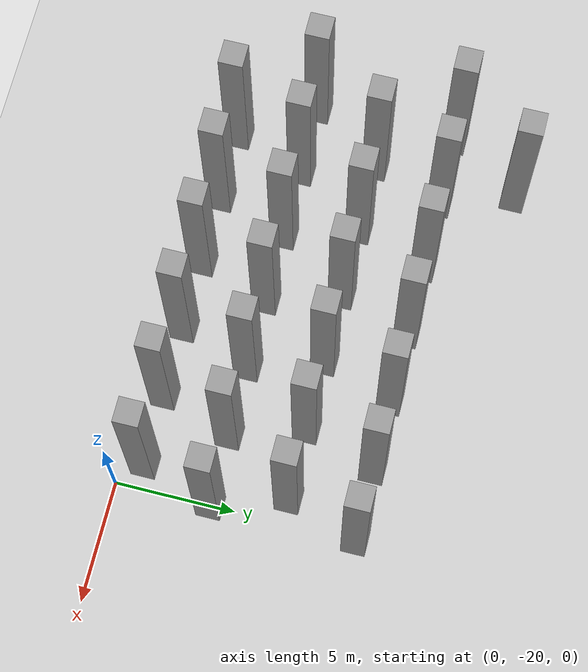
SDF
<sdf version="1.7">
 <world name="default">
  <model name="ground_plane">
   <static>1</static>
   <link name="link">
    <collision name="collision">
     <geometry><plane><normal>0 0 1</normal><size>100 100</size></plane></geometry>
     <surface>
      <contact><collide_bitmask>65535</collide_bitmask></contact>
      <friction><ode><mu>100</mu><mu2>50</mu2></ode></friction>
     </surface>
    </collision>
    <visual name="visual">
     <cast_shadows>0</cast_shadows>
     <geometry><plane><normal>0 0 1</normal><size>100 100</size></plane></geometry>
     <material>
      <script><uri>file://media/materials/scripts/gazebo.material</uri><name>Gazebo/Grey</name></script>
     </material>
    </visual>
   </link>
  </model>
  <model name="unit_box_static1">
   <link name="link">
    <inertial>
     <mass>1</mass>
     <inertia>
      <ixx>0.166667</ixx>
      <ixy>0</ixy>
      <ixz>0</ixz>
      <iyy>0.166667</iyy>
      <iyz>0</iyz>
      <izz>0.166667</izz>
     </inertia>
    </inertial>
    <visual name="visual">
     <geometry><box><size>1 1 8</size></box></geometry>
     <material>
      <script><name>Gazebo/Grey</name><uri>file://media/materials/scripts/gazebo.material</uri></script>
      <shader type="pixel"/>
     </material>
    </visual>
    <collision name="collision">
     <geometry><box><size>1 1 8</size></box></geometry>
     <surface>
      <friction>
       <ode><mu>1</mu><mu2>1</mu2><fdir1>0 0 0</fdir1><slip1>0</slip1><slip2>0</slip2></ode>
       <torsional>
        <coefficient>1</coefficient>
        <patch_radius>0</patch_radius>
        <surface_radius>0</surface_radius>
        <use_patch_radius>1</use_patch_radius>
        <ode><slip>0</slip></ode>
       </torsional>
      </friction>
      <bounce><restitution_coefficient>0</restitution_coefficient><threshold>1e+06</threshold></bounce>
      <contact>
       <collide_without_contact>0</collide_without_contact>
       <collide_without_contact_bitmask>1</collide_without_contact_bitmask>
       <collide_bitmask>1</collide_bitmask>
       <ode>
        <soft_cfm>0</soft_cfm>
        <soft_erp>0.2</soft_erp>
        <kp>1e+13</kp>
        <kd>1</kd>
        <max_vel>0.01</max_vel>
        <min_depth>0</min_depth>
       </ode>
       <bullet>
        <split_impulse>1</split_impulse>
        <split_impulse_penetration_threshold>-0.01</split_impulse_penetration_threshold>
        <soft_cfm>0</soft_cfm>
        <soft_erp>0.2</soft_erp>
        <kp>1e+13</kp>
        <kd>1</kd>
       </bullet>
      </contact>
     </surface>
    </collision>
   </link>
   <static>1</static>
   <pose>-16 -19 4 0 -0 0</pose>
  </model>
  <model name="unit_box_static2">
   <link name="link">
    <inertial>
     <mass>1</mass>
     <inertia>
      <ixx>0.166667</ixx>
      <ixy>0</ixy>
      <ixz>0</ixz>
      <iyy>0.166667</iyy>
      <iyz>0</iyz>
      <izz>0.166667</izz>
     </inertia>
    </inertial>
    <visual name="visual">
     <geometry><box><size>1 1 8</size></box></geometry>
     <material>
      <script><name>Gazebo/Grey</name><uri>file://media/materials/scripts/gazebo.material</uri></script>
      <shader type="pixel"/>
     </material>
    </visual>
    <collision name="collision">
     <geometry><box><size>1 1 8</size></box></geometry>
     <surface>
      <friction>
       <ode><mu>1</mu><mu2>1</mu2><fdir1>0 0 0</fdir1><slip1>0</slip1><slip2>0</slip2></ode>
       <torsional>
        <coefficient>1</coefficient>
        <patch_radius>0</patch_radius>
        <surface_radius>0</surface_radius>
        <use_patch_radius>1</use_patch_radius>
        <ode><slip>0</slip></ode>
       </torsional>
      </friction>
      <bounce><restitution_coefficient>0</restitution_coefficient><threshold>1e+06</threshold></bounce>
      <contact>
       <collide_without_contact>0</collide_without_contact>
       <collide_without_contact_bitmask>1</collide_without_contact_bitmask>
       <collide_bitmask>1</collide_bitmask>
       <ode>
        <soft_cfm>0</soft_cfm>
        <soft_erp>0.2</soft_erp>
        <kp>1e+13</kp>
        <kd>1</kd>
        <max_vel>0.01</max_vel>
        <min_depth>0</min_depth>
       </ode>
       <bullet>
        <split_impulse>1</split_impulse>
        <split_impulse_penetration_threshold>-0.01</split_impulse_penetration_threshold>
        <soft_cfm>0</soft_cfm>
        <soft_erp>0.2</soft_erp>
        <kp>1e+13</kp>
        <kd>1</kd>
       </bullet>
      </contact>
     </surface>
    </collision>
   </link>
   <static>1</static>
   <pose>-13 -19 4 0 -0 0</pose>
  </model>
  <model name="unit_box_static3">
   <link name="link">
    <inertial>
     <mass>1</mass>
     <inertia>
      <ixx>0.166667</ixx>
      <ixy>0</ixy>
      <ixz>0</ixz>
      <iyy>0.166667</iyy>
      <iyz>0</iyz>
      <izz>0.166667</izz>
     </inertia>
    </inertial>
    <visual name="visual">
     <geometry><box><size>1 1 8</size></box></geometry>
     <material>
      <script><name>Gazebo/Grey</name><uri>file://media/materials/scripts/gazebo.material</uri></script>
      <shader type="pixel"/>
     </material>
    </visual>
    <collision name="collision">
     <geometry><box><size>1 1 8</size></box></geometry>
     <surface>
      <friction>
       <ode><mu>1</mu><mu2>1</mu2><fdir1>0 0 0</fdir1><slip1>0</slip1><slip2>0</slip2></ode>
       <torsional>
        <coefficient>1</coefficient>
        <patch_radius>0</patch_radius>
        <surface_radius>0</surface_radius>
        <use_patch_radius>1</use_patch_radius>
        <ode><slip>0</slip></ode>
       </torsional>
      </friction>
      <bounce><restitution_coefficient>0</restitution_coefficient><threshold>1e+06</threshold></bounce>
      <contact>
       <collide_without_contact>0</collide_without_contact>
       <collide_without_contact_bitmask>1</collide_without_contact_bitmask>
       <collide_bitmask>1</collide_bitmask>
       <ode>
        <soft_cfm>0</soft_cfm>
        <soft_erp>0.2</soft_erp>
        <kp>1e+13</kp>
        <kd>1</kd>
        <max_vel>0.01</max_vel>
        <min_depth>0</min_depth>
       </ode>
       <bullet>
        <split_impulse>1</split_impulse>
        <split_impulse_penetration_threshold>-0.01</split_impulse_penetration_threshold>
        <soft_cfm>0</soft_cfm>
        <soft_erp>0.2</soft_erp>
        <kp>1e+13</kp>
        <kd>1</kd>
       </bullet>
      </contact>
     </surface>
    </collision>
   </link>
   <static>1</static>
   <pose>-10 -19 4 0 -0 0</pose>
  </model>
  <model name="unit_box_static4">
   <link name="link">
    <inertial>
     <mass>1</mass>
     <inertia>
      <ixx>0.166667</ixx>
      <ixy>0</ixy>
      <ixz>0</ixz>
      <iyy>0.166667</iyy>
      <iyz>0</iyz>
      <izz>0.166667</izz>
     </inertia>
    </inertial>
    <visual name="visual">
     <geometry><box><size>1 1 8</size></box></geometry>
     <material>
      <script><name>Gazebo/Grey</name><uri>file://media/materials/scripts/gazebo.material</uri></script>
      <shader type="pixel"/>
     </material>
    </visual>
    <collision name="collision">
     <geometry><box><size>1 1 8</size></box></geometry>
     <surface>
      <friction>
       <ode><mu>1</mu><mu2>1</mu2><fdir1>0 0 0</fdir1><slip1>0</slip1><slip2>0</slip2></ode>
       <torsional>
        <coefficient>1</coefficient>
        <patch_radius>0</patch_radius>
        <surface_radius>0</surface_radius>
        <use_patch_radius>1</use_patch_radius>
        <ode><slip>0</slip></ode>
       </torsional>
      </friction>
      <bounce><restitution_coefficient>0</restitution_coefficient><threshold>1e+06</threshold></bounce>
      <contact>
       <collide_without_contact>0</collide_without_contact>
       <collide_without_contact_bitmask>1</collide_without_contact_bitmask>
       <collide_bitmask>1</collide_bitmask>
       <ode>
        <soft_cfm>0</soft_cfm>
        <soft_erp>0.2</soft_erp>
        <kp>1e+13</kp>
        <kd>1</kd>
        <max_vel>0.01</max_vel>
        <min_depth>0</min_depth>
       </ode>
       <bullet>
        <split_impulse>1</split_impulse>
        <split_impulse_penetration_threshold>-0.01</split_impulse_penetration_threshold>
        <soft_cfm>0</soft_cfm>
        <soft_erp>0.2</soft_erp>
        <kp>1e+13</kp>
        <kd>1</kd>
       </bullet>
      </contact>
     </surface>
    </collision>
   </link>
   <static>1</static>
   <pose>-7 -19 4 0 -0 0</pose>
  </model>
  <model name="unit_box_static5">
   <link name="link">
    <inertial>
     <mass>1</mass>
     <inertia>
      <ixx>0.166667</ixx>
      <ixy>0</ixy>
      <ixz>0</ixz>
      <iyy>0.166667</iyy>
      <iyz>0</iyz>
      <izz>0.166667</izz>
     </inertia>
    </inertial>
    <visual name="visual">
     <geometry><box><size>1 1 8</size></box></geometry>
     <material>
      <script><name>Gazebo/Grey</name><uri>file://media/materials/scripts/gazebo.material</uri></script>
      <shader type="pixel"/>
     </material>
    </visual>
    <collision name="collision">
     <geometry><box><size>1 1 8</size></box></geometry>
     <surface>
      <friction>
       <ode><mu>1</mu><mu2>1</mu2><fdir1>0 0 0</fdir1><slip1>0</slip1><slip2>0</slip2></ode>
       <torsional>
        <coefficient>1</coefficient>
        <patch_radius>0</patch_radius>
        <surface_radius>0</surface_radius>
        <use_patch_radius>1</use_patch_radius>
        <ode><slip>0</slip></ode>
       </torsional>
      </friction>
      <bounce><restitution_coefficient>0</restitution_coefficient><threshold>1e+06</threshold></bounce>
      <contact>
       <collide_without_contact>0</collide_without_contact>
       <collide_without_contact_bitmask>1</collide_without_contact_bitmask>
       <collide_bitmask>1</collide_bitmask>
       <ode>
        <soft_cfm>0</soft_cfm>
        <soft_erp>0.2</soft_erp>
        <kp>1e+13</kp>
        <kd>1</kd>
        <max_vel>0.01</max_vel>
        <min_depth>0</min_depth>
       </ode>
       <bullet>
        <split_impulse>1</split_impulse>
        <split_impulse_penetration_threshold>-0.01</split_impulse_penetration_threshold>
        <soft_cfm>0</soft_cfm>
        <soft_erp>0.2</soft_erp>
        <kp>1e+13</kp>
        <kd>1</kd>
       </bullet>
      </contact>
     </surface>
    </collision>
   </link>
   <static>1</static>
   <pose>-4 -19 4 0 -0 0</pose>
  </model>
  <model name="unit_box_static6">
   <link name="link">
    <inertial>
     <mass>1</mass>
     <inertia>
      <ixx>0.166667</ixx>
      <ixy>0</ixy>
      <ixz>0</ixz>
      <iyy>0.166667</iyy>
      <iyz>0</iyz>
      <izz>0.166667</izz>
     </inertia>
    </inertial>
    <visual name="visual">
     <geometry><box><size>1 1 8</size></box></geometry>
     <material>
      <script><name>Gazebo/Grey</name><uri>file://media/materials/scripts/gazebo.material</uri></script>
      <shader type="pixel"/>
     </material>
    </visual>
    <collision name="collision">
     <geometry><box><size>1 1 8</size></box></geometry>
     <surface>
      <friction>
       <ode><mu>1</mu><mu2>1</mu2><fdir1>0 0 0</fdir1><slip1>0</slip1><slip2>0</slip2></ode>
       <torsional>
        <coefficient>1</coefficient>
        <patch_radius>0</patch_radius>
        <surface_radius>0</surface_radius>
        <use_patch_radius>1</use_patch_radius>
        <ode><slip>0</slip></ode>
       </torsional>
      </friction>
      <bounce><restitution_coefficient>0</restitution_coefficient><threshold>1e+06</threshold></bounce>
      <contact>
       <collide_without_contact>0</collide_without_contact>
       <collide_without_contact_bitmask>1</collide_without_contact_bitmask>
       <collide_bitmask>1</collide_bitmask>
       <ode>
        <soft_cfm>0</soft_cfm>
        <soft_erp>0.2</soft_erp>
        <kp>1e+13</kp>
        <kd>1</kd>
        <max_vel>0.01</max_vel>
        <min_depth>0</min_depth>
       </ode>
       <bullet>
        <split_impulse>1</split_impulse>
        <split_impulse_penetration_threshold>-0.01</split_impulse_penetration_threshold>
        <soft_cfm>0</soft_cfm>
        <soft_erp>0.2</soft_erp>
        <kp>1e+13</kp>
        <kd>1</kd>
       </bullet>
      </contact>
     </surface>
    </collision>
   </link>
   <static>1</static>
   <pose>-1 -19 4 0 -0 0</pose>
  </model>
  <model name="unit_box_static13">
   <link name="link">
    <inertial>
     <mass>1</mass>
     <inertia>
      <ixx>0.166667</ixx>
      <ixy>0</ixy>
      <ixz>0</ixz>
      <iyy>0.166667</iyy>
      <iyz>0</iyz>
      <izz>0.166667</izz>
     </inertia>
    </inertial>
    <visual name="visual">
     <geometry><box><size>1 1 8</size></box></geometry>
     <material>
      <script><name>Gazebo/Grey</name><uri>file://media/materials/scripts/gazebo.material</uri></script>
      <shader type="pixel"/>
     </material>
    </visual>
    <collision name="collision">
     <geometry><box><size>1 1 8</size></box></geometry>
     <surface>
      <friction>
       <ode><mu>1</mu><mu2>1</mu2><fdir1>0 0 0</fdir1><slip1>0</slip1><slip2>0</slip2></ode>
       <torsional>
        <coefficient>1</coefficient>
        <patch_radius>0</patch_radius>
        <surface_radius>0</surface_radius>
        <use_patch_radius>1</use_patch_radius>
        <ode><slip>0</slip></ode>
       </torsional>
      </friction>
      <bounce><restitution_coefficient>0</restitution_coefficient><threshold>1e+06</threshold></bounce>
      <contact>
       <collide_without_contact>0</collide_without_contact>
       <collide_without_contact_bitmask>1</collide_without_contact_bitmask>
       <collide_bitmask>1</collide_bitmask>
       <ode>
        <soft_cfm>0</soft_cfm>
        <soft_erp>0.2</soft_erp>
        <kp>1e+13</kp>
        <kd>1</kd>
        <max_vel>0.01</max_vel>
        <min_depth>0</min_depth>
       </ode>
       <bullet>
        <split_impulse>1</split_impulse>
        <split_impulse_penetration_threshold>-0.01</split_impulse_penetration_threshold>
        <soft_cfm>0</soft_cfm>
        <soft_erp>0.2</soft_erp>
        <kp>1e+13</kp>
        <kd>1</kd>
       </bullet>
      </contact>
     </surface>
    </collision>
   </link>
   <static>1</static>
   <pose>-18 -16 4 0 -0 0</pose>
  </model>
  <model name="unit_box_static14">
   <link name="link">
    <inertial>
     <mass>1</mass>
     <inertia>
      <ixx>0.166667</ixx>
      <ixy>0</ixy>
      <ixz>0</ixz>
      <iyy>0.166667</iyy>
      <iyz>0</iyz>
      <izz>0.166667</izz>
     </inertia>
    </inertial>
    <visual name="visual">
     <geometry><box><size>1 1 8</size></box></geometry>
     <material>
      <script><name>Gazebo/Grey</name><uri>file://media/materials/scripts/gazebo.material</uri></script>
      <shader type="pixel"/>
     </material>
    </visual>
    <collision name="collision">
     <geometry><box><size>1 1 8</size></box></geometry>
     <surface>
      <friction>
       <ode><mu>1</mu><mu2>1</mu2><fdir1>0 0 0</fdir1><slip1>0</slip1><slip2>0</slip2></ode>
       <torsional>
        <coefficient>1</coefficient>
        <patch_radius>0</patch_radius>
        <surface_radius>0</surface_radius>
        <use_patch_radius>1</use_patch_radius>
        <ode><slip>0</slip></ode>
       </torsional>
      </friction>
      <bounce><restitution_coefficient>0</restitution_coefficient><threshold>1e+06</threshold></bounce>
      <contact>
       <collide_without_contact>0</collide_without_contact>
       <collide_without_contact_bitmask>1</collide_without_contact_bitmask>
       <collide_bitmask>1</collide_bitmask>
       <ode>
        <soft_cfm>0</soft_cfm>
        <soft_erp>0.2</soft_erp>
        <kp>1e+13</kp>
        <kd>1</kd>
        <max_vel>0.01</max_vel>
        <min_depth>0</min_depth>
       </ode>
       <bullet>
        <split_impulse>1</split_impulse>
        <split_impulse_penetration_threshold>-0.01</split_impulse_penetration_threshold>
        <soft_cfm>0</soft_cfm>
        <soft_erp>0.2</soft_erp>
        <kp>1e+13</kp>
        <kd>1</kd>
       </bullet>
      </contact>
     </surface>
    </collision>
   </link>
   <static>1</static>
   <pose>-15 -16 4 0 -0 0</pose>
  </model>
  <model name="unit_box_static15">
   <link name="link">
    <inertial>
     <mass>1</mass>
     <inertia>
      <ixx>0.166667</ixx>
      <ixy>0</ixy>
      <ixz>0</ixz>
      <iyy>0.166667</iyy>
      <iyz>0</iyz>
      <izz>0.166667</izz>
     </inertia>
    </inertial>
    <visual name="visual">
     <geometry><box><size>1 1 8</size></box></geometry>
     <material>
      <script><name>Gazebo/Grey</name><uri>file://media/materials/scripts/gazebo.material</uri></script>
      <shader type="pixel"/>
     </material>
    </visual>
    <collision name="collision">
     <geometry><box><size>1 1 8</size></box></geometry>
     <surface>
      <friction>
       <ode><mu>1</mu><mu2>1</mu2><fdir1>0 0 0</fdir1><slip1>0</slip1><slip2>0</slip2></ode>
       <torsional>
        <coefficient>1</coefficient>
        <patch_radius>0</patch_radius>
        <surface_radius>0</surface_radius>
        <use_patch_radius>1</use_patch_radius>
        <ode><slip>0</slip></ode>
       </torsional>
      </friction>
      <bounce><restitution_coefficient>0</restitution_coefficient><threshold>1e+06</threshold></bounce>
      <contact>
       <collide_without_contact>0</collide_without_contact>
       <collide_without_contact_bitmask>1</collide_without_contact_bitmask>
       <collide_bitmask>1</collide_bitmask>
       <ode>
        <soft_cfm>0</soft_cfm>
        <soft_erp>0.2</soft_erp>
        <kp>1e+13</kp>
        <kd>1</kd>
        <max_vel>0.01</max_vel>
        <min_depth>0</min_depth>
       </ode>
       <bullet>
        <split_impulse>1</split_impulse>
        <split_impulse_penetration_threshold>-0.01</split_impulse_penetration_threshold>
        <soft_cfm>0</soft_cfm>
        <soft_erp>0.2</soft_erp>
        <kp>1e+13</kp>
        <kd>1</kd>
       </bullet>
      </contact>
     </surface>
    </collision>
   </link>
   <static>1</static>
   <pose>-12 -16 4 0 -0 0</pose>
  </model>
  <model name="unit_box_static16">
   <link name="link">
    <inertial>
     <mass>1</mass>
     <inertia>
      <ixx>0.166667</ixx>
      <ixy>0</ixy>
      <ixz>0</ixz>
      <iyy>0.166667</iyy>
      <iyz>0</iyz>
      <izz>0.166667</izz>
     </inertia>
    </inertial>
    <visual name="visual">
     <geometry><box><size>1 1 8</size></box></geometry>
     <material>
      <script><name>Gazebo/Grey</name><uri>file://media/materials/scripts/gazebo.material</uri></script>
      <shader type="pixel"/>
     </material>
    </visual>
    <collision name="collision">
     <geometry><box><size>1 1 8</size></box></geometry>
     <surface>
      <friction>
       <ode><mu>1</mu><mu2>1</mu2><fdir1>0 0 0</fdir1><slip1>0</slip1><slip2>0</slip2></ode>
       <torsional>
        <coefficient>1</coefficient>
        <patch_radius>0</patch_radius>
        <surface_radius>0</surface_radius>
        <use_patch_radius>1</use_patch_radius>
        <ode><slip>0</slip></ode>
       </torsional>
      </friction>
      <bounce><restitution_coefficient>0</restitution_coefficient><threshold>1e+06</threshold></bounce>
      <contact>
       <collide_without_contact>0</collide_without_contact>
       <collide_without_contact_bitmask>1</collide_without_contact_bitmask>
       <collide_bitmask>1</collide_bitmask>
       <ode>
        <soft_cfm>0</soft_cfm>
        <soft_erp>0.2</soft_erp>
        <kp>1e+13</kp>
        <kd>1</kd>
        <max_vel>0.01</max_vel>
        <min_depth>0</min_depth>
       </ode>
       <bullet>
        <split_impulse>1</split_impulse>
        <split_impulse_penetration_threshold>-0.01</split_impulse_penetration_threshold>
        <soft_cfm>0</soft_cfm>
        <soft_erp>0.2</soft_erp>
        <kp>1e+13</kp>
        <kd>1</kd>
       </bullet>
      </contact>
     </surface>
    </collision>
   </link>
   <static>1</static>
   <pose>-9 -16 4 0 -0 0</pose>
  </model>
  <model name="unit_box_static17">
   <link name="link">
    <inertial>
     <mass>1</mass>
     <inertia>
      <ixx>0.166667</ixx>
      <ixy>0</ixy>
      <ixz>0</ixz>
      <iyy>0.166667</iyy>
      <iyz>0</iyz>
      <izz>0.166667</izz>
     </inertia>
    </inertial>
    <visual name="visual">
     <geometry><box><size>1 1 8</size></box></geometry>
     <material>
      <script><name>Gazebo/Grey</name><uri>file://media/materials/scripts/gazebo.material</uri></script>
      <shader type="pixel"/>
     </material>
    </visual>
    <collision name="collision">
     <geometry><box><size>1 1 8</size></box></geometry>
     <surface>
      <friction>
       <ode><mu>1</mu><mu2>1</mu2><fdir1>0 0 0</fdir1><slip1>0</slip1><slip2>0</slip2></ode>
       <torsional>
        <coefficient>1</coefficient>
        <patch_radius>0</patch_radius>
        <surface_radius>0</surface_radius>
        <use_patch_radius>1</use_patch_radius>
        <ode><slip>0</slip></ode>
       </torsional>
      </friction>
      <bounce><restitution_coefficient>0</restitution_coefficient><threshold>1e+06</threshold></bounce>
      <contact>
       <collide_without_contact>0</collide_without_contact>
       <collide_without_contact_bitmask>1</collide_without_contact_bitmask>
       <collide_bitmask>1</collide_bitmask>
       <ode>
        <soft_cfm>0</soft_cfm>
        <soft_erp>0.2</soft_erp>
        <kp>1e+13</kp>
        <kd>1</kd>
        <max_vel>0.01</max_vel>
        <min_depth>0</min_depth>
       </ode>
       <bullet>
        <split_impulse>1</split_impulse>
        <split_impulse_penetration_threshold>-0.01</split_impulse_penetration_threshold>
        <soft_cfm>0</soft_cfm>
        <soft_erp>0.2</soft_erp>
        <kp>1e+13</kp>
        <kd>1</kd>
       </bullet>
      </contact>
     </surface>
    </collision>
   </link>
   <static>1</static>
   <pose>-6 -16 4 0 -0 0</pose>
  </model>
  <model name="unit_box_static18">
   <link name="link">
    <inertial>
     <mass>1</mass>
     <inertia>
      <ixx>0.166667</ixx>
      <ixy>0</ixy>
      <ixz>0</ixz>
      <iyy>0.166667</iyy>
      <iyz>0</iyz>
      <izz>0.166667</izz>
     </inertia>
    </inertial>
    <visual name="visual">
     <geometry><box><size>1 1 8</size></box></geometry>
     <material>
      <script><name>Gazebo/Grey</name><uri>file://media/materials/scripts/gazebo.material</uri></script>
      <shader type="pixel"/>
     </material>
    </visual>
    <collision name="collision">
     <geometry><box><size>1 1 8</size></box></geometry>
     <surface>
      <friction>
       <ode><mu>1</mu><mu2>1</mu2><fdir1>0 0 0</fdir1><slip1>0</slip1><slip2>0</slip2></ode>
       <torsional>
        <coefficient>1</coefficient>
        <patch_radius>0</patch_radius>
        <surface_radius>0</surface_radius>
        <use_patch_radius>1</use_patch_radius>
        <ode><slip>0</slip></ode>
       </torsional>
      </friction>
      <bounce><restitution_coefficient>0</restitution_coefficient><threshold>1e+06</threshold></bounce>
      <contact>
       <collide_without_contact>0</collide_without_contact>
       <collide_without_contact_bitmask>1</collide_without_contact_bitmask>
       <collide_bitmask>1</collide_bitmask>
       <ode>
        <soft_cfm>0</soft_cfm>
        <soft_erp>0.2</soft_erp>
        <kp>1e+13</kp>
        <kd>1</kd>
        <max_vel>0.01</max_vel>
        <min_depth>0</min_depth>
       </ode>
       <bullet>
        <split_impulse>1</split_impulse>
        <split_impulse_penetration_threshold>-0.01</split_impulse_penetration_threshold>
        <soft_cfm>0</soft_cfm>
        <soft_erp>0.2</soft_erp>
        <kp>1e+13</kp>
        <kd>1</kd>
       </bullet>
      </contact>
     </surface>
    </collision>
   </link>
   <static>1</static>
   <pose>-3 -16 4 0 -0 0</pose>
  </model>
  <model name="unit_box_static19">
   <link name="link">
    <inertial>
     <mass>1</mass>
     <inertia>
      <ixx>0.166667</ixx>
      <ixy>0</ixy>
      <ixz>0</ixz>
      <iyy>0.166667</iyy>
      <iyz>0</iyz>
      <izz>0.166667</izz>
     </inertia>
    </inertial>
    <visual name="visual">
     <geometry><box><size>1 1 8</size></box></geometry>
     <material>
      <script><name>Gazebo/Grey</name><uri>file://media/materials/scripts/gazebo.material</uri></script>
      <shader type="pixel"/>
     </material>
    </visual>
    <collision name="collision">
     <geometry><box><size>1 1 8</size></box></geometry>
     <surface>
      <friction>
       <ode><mu>1</mu><mu2>1</mu2><fdir1>0 0 0</fdir1><slip1>0</slip1><slip2>0</slip2></ode>
       <torsional>
        <coefficient>1</coefficient>
        <patch_radius>0</patch_radius>
        <surface_radius>0</surface_radius>
        <use_patch_radius>1</use_patch_radius>
        <ode><slip>0</slip></ode>
       </torsional>
      </friction>
      <bounce><restitution_coefficient>0</restitution_coefficient><threshold>1e+06</threshold></bounce>
      <contact>
       <collide_without_contact>0</collide_without_contact>
       <collide_without_contact_bitmask>1</collide_without_contact_bitmask>
       <collide_bitmask>1</collide_bitmask>
       <ode>
        <soft_cfm>0</soft_cfm>
        <soft_erp>0.2</soft_erp>
        <kp>1e+13</kp>
        <kd>1</kd>
        <max_vel>0.01</max_vel>
        <min_depth>0</min_depth>
       </ode>
       <bullet>
        <split_impulse>1</split_impulse>
        <split_impulse_penetration_threshold>-0.01</split_impulse_penetration_threshold>
        <soft_cfm>0</soft_cfm>
        <soft_erp>0.2</soft_erp>
        <kp>1e+13</kp>
        <kd>1</kd>
       </bullet>
      </contact>
     </surface>
    </collision>
   </link>
   <static>1</static>
   <pose>0 -16 4 0 -0 0</pose>
  </model>
  <model name="unit_box_static26">
   <link name="link">
    <inertial>
     <mass>1</mass>
     <inertia>
      <ixx>0.166667</ixx>
      <ixy>0</ixy>
      <ixz>0</ixz>
      <iyy>0.166667</iyy>
      <iyz>0</iyz>
      <izz>0.166667</izz>
     </inertia>
    </inertial>
    <visual name="visual">
     <geometry><box><size>1 1 8</size></box></geometry>
     <material>
      <script><name>Gazebo/Grey</name><uri>file://media/materials/scripts/gazebo.material</uri></script>
      <shader type="pixel"/>
     </material>
    </visual>
    <collision name="collision">
     <geometry><box><size>1 1 8</size></box></geometry>
     <surface>
      <friction>
       <ode><mu>1</mu><mu2>1</mu2><fdir1>0 0 0</fdir1><slip1>0</slip1><slip2>0</slip2></ode>
       <torsional>
        <coefficient>1</coefficient>
        <patch_radius>0</patch_radius>
        <surface_radius>0</surface_radius>
        <use_patch_radius>1</use_patch_radius>
        <ode><slip>0</slip></ode>
       </torsional>
      </friction>
      <bounce><restitution_coefficient>0</restitution_coefficient><threshold>1e+06</threshold></bounce>
      <contact>
       <collide_without_contact>0</collide_without_contact>
       <collide_without_contact_bitmask>1</collide_without_contact_bitmask>
       <collide_bitmask>1</collide_bitmask>
       <ode>
        <soft_cfm>0</soft_cfm>
        <soft_erp>0.2</soft_erp>
        <kp>1e+13</kp>
        <kd>1</kd>
        <max_vel>0.01</max_vel>
        <min_depth>0</min_depth>
       </ode>
       <bullet>
        <split_impulse>1</split_impulse>
        <split_impulse_penetration_threshold>-0.01</split_impulse_penetration_threshold>
        <soft_cfm>0</soft_cfm>
        <soft_erp>0.2</soft_erp>
        <kp>1e+13</kp>
        <kd>1</kd>
       </bullet>
      </contact>
     </surface>
    </collision>
   </link>
   <static>1</static>
   <pose>-16 -13 4 0 -0 0</pose>
  </model>
  <model name="unit_box_static27">
   <link name="link">
    <inertial>
     <mass>1</mass>
     <inertia>
      <ixx>0.166667</ixx>
      <ixy>0</ixy>
      <ixz>0</ixz>
      <iyy>0.166667</iyy>
      <iyz>0</iyz>
      <izz>0.166667</izz>
     </inertia>
    </inertial>
    <visual name="visual">
     <geometry><box><size>1 1 8</size></box></geometry>
     <material>
      <script><name>Gazebo/Grey</name><uri>file://media/materials/scripts/gazebo.material</uri></script>
      <shader type="pixel"/>
     </material>
    </visual>
    <collision name="collision">
     <geometry><box><size>1 1 8</size></box></geometry>
     <surface>
      <friction>
       <ode><mu>1</mu><mu2>1</mu2><fdir1>0 0 0</fdir1><slip1>0</slip1><slip2>0</slip2></ode>
       <torsional>
        <coefficient>1</coefficient>
        <patch_radius>0</patch_radius>
        <surface_radius>0</surface_radius>
        <use_patch_radius>1</use_patch_radius>
        <ode><slip>0</slip></ode>
       </torsional>
      </friction>
      <bounce><restitution_coefficient>0</restitution_coefficient><threshold>1e+06</threshold></bounce>
      <contact>
       <collide_without_contact>0</collide_without_contact>
       <collide_without_contact_bitmask>1</collide_without_contact_bitmask>
       <collide_bitmask>1</collide_bitmask>
       <ode>
        <soft_cfm>0</soft_cfm>
        <soft_erp>0.2</soft_erp>
        <kp>1e+13</kp>
        <kd>1</kd>
        <max_vel>0.01</max_vel>
        <min_depth>0</min_depth>
       </ode>
       <bullet>
        <split_impulse>1</split_impulse>
        <split_impulse_penetration_threshold>-0.01</split_impulse_penetration_threshold>
        <soft_cfm>0</soft_cfm>
        <soft_erp>0.2</soft_erp>
        <kp>1e+13</kp>
        <kd>1</kd>
       </bullet>
      </contact>
     </surface>
    </collision>
   </link>
   <static>1</static>
   <pose>-13 -13 4 0 -0 0</pose>
  </model>
  <model name="unit_box_static28">
   <link name="link">
    <inertial>
     <mass>1</mass>
     <inertia>
      <ixx>0.166667</ixx>
      <ixy>0</ixy>
      <ixz>0</ixz>
      <iyy>0.166667</iyy>
      <iyz>0</iyz>
      <izz>0.166667</izz>
     </inertia>
    </inertial>
    <visual name="visual">
     <geometry><box><size>1 1 8</size></box></geometry>
     <material>
      <script><name>Gazebo/Grey</name><uri>file://media/materials/scripts/gazebo.material</uri></script>
      <shader type="pixel"/>
     </material>
    </visual>
    <collision name="collision">
     <geometry><box><size>1 1 8</size></box></geometry>
     <surface>
      <friction>
       <ode><mu>1</mu><mu2>1</mu2><fdir1>0 0 0</fdir1><slip1>0</slip1><slip2>0</slip2></ode>
       <torsional>
        <coefficient>1</coefficient>
        <patch_radius>0</patch_radius>
        <surface_radius>0</surface_radius>
        <use_patch_radius>1</use_patch_radius>
        <ode><slip>0</slip></ode>
       </torsional>
      </friction>
      <bounce><restitution_coefficient>0</restitution_coefficient><threshold>1e+06</threshold></bounce>
      <contact>
       <collide_without_contact>0</collide_without_contact>
       <collide_without_contact_bitmask>1</collide_without_contact_bitmask>
       <collide_bitmask>1</collide_bitmask>
       <ode>
        <soft_cfm>0</soft_cfm>
        <soft_erp>0.2</soft_erp>
        <kp>1e+13</kp>
        <kd>1</kd>
        <max_vel>0.01</max_vel>
        <min_depth>0</min_depth>
       </ode>
       <bullet>
        <split_impulse>1</split_impulse>
        <split_impulse_penetration_threshold>-0.01</split_impulse_penetration_threshold>
        <soft_cfm>0</soft_cfm>
        <soft_erp>0.2</soft_erp>
        <kp>1e+13</kp>
        <kd>1</kd>
       </bullet>
      </contact>
     </surface>
    </collision>
   </link>
   <static>1</static>
   <pose>-10 -13 4 0 -0 0</pose>
  </model>
  <model name="unit_box_static29">
   <link name="link">
    <inertial>
     <mass>1</mass>
     <inertia>
      <ixx>0.166667</ixx>
      <ixy>0</ixy>
      <ixz>0</ixz>
      <iyy>0.166667</iyy>
      <iyz>0</iyz>
      <izz>0.166667</izz>
     </inertia>
    </inertial>
    <visual name="visual">
     <geometry><box><size>1 1 8</size></box></geometry>
     <material>
      <script><name>Gazebo/Grey</name><uri>file://media/materials/scripts/gazebo.material</uri></script>
      <shader type="pixel"/>
     </material>
    </visual>
    <collision name="collision">
     <geometry><box><size>1 1 8</size></box></geometry>
     <surface>
      <friction>
       <ode><mu>1</mu><mu2>1</mu2><fdir1>0 0 0</fdir1><slip1>0</slip1><slip2>0</slip2></ode>
       <torsional>
        <coefficient>1</coefficient>
        <patch_radius>0</patch_radius>
        <surface_radius>0</surface_radius>
        <use_patch_radius>1</use_patch_radius>
        <ode><slip>0</slip></ode>
       </torsional>
      </friction>
      <bounce><restitution_coefficient>0</restitution_coefficient><threshold>1e+06</threshold></bounce>
      <contact>
       <collide_without_contact>0</collide_without_contact>
       <collide_without_contact_bitmask>1</collide_without_contact_bitmask>
       <collide_bitmask>1</collide_bitmask>
       <ode>
        <soft_cfm>0</soft_cfm>
        <soft_erp>0.2</soft_erp>
        <kp>1e+13</kp>
        <kd>1</kd>
        <max_vel>0.01</max_vel>
        <min_depth>0</min_depth>
       </ode>
       <bullet>
        <split_impulse>1</split_impulse>
        <split_impulse_penetration_threshold>-0.01</split_impulse_penetration_threshold>
        <soft_cfm>0</soft_cfm>
        <soft_erp>0.2</soft_erp>
        <kp>1e+13</kp>
        <kd>1</kd>
       </bullet>
      </contact>
     </surface>
    </collision>
   </link>
   <static>1</static>
   <pose>-7 -13 4 0 -0 0</pose>
  </model>
  <model name="unit_box_static30">
   <link name="link">
    <inertial>
     <mass>1</mass>
     <inertia>
      <ixx>0.166667</ixx>
      <ixy>0</ixy>
      <ixz>0</ixz>
      <iyy>0.166667</iyy>
      <iyz>0</iyz>
      <izz>0.166667</izz>
     </inertia>
    </inertial>
    <visual name="visual">
     <geometry><box><size>1 1 8</size></box></geometry>
     <material>
      <script><name>Gazebo/Grey</name><uri>file://media/materials/scripts/gazebo.material</uri></script>
      <shader type="pixel"/>
     </material>
    </visual>
    <collision name="collision">
     <geometry><box><size>1 1 8</size></box></geometry>
     <surface>
      <friction>
       <ode><mu>1</mu><mu2>1</mu2><fdir1>0 0 0</fdir1><slip1>0</slip1><slip2>0</slip2></ode>
       <torsional>
        <coefficient>1</coefficient>
        <patch_radius>0</patch_radius>
        <surface_radius>0</surface_radius>
        <use_patch_radius>1</use_patch_radius>
        <ode><slip>0</slip></ode>
       </torsional>
      </friction>
      <bounce><restitution_coefficient>0</restitution_coefficient><threshold>1e+06</threshold></bounce>
      <contact>
       <collide_without_contact>0</collide_without_contact>
       <collide_without_contact_bitmask>1</collide_without_contact_bitmask>
       <collide_bitmask>1</collide_bitmask>
       <ode>
        <soft_cfm>0</soft_cfm>
        <soft_erp>0.2</soft_erp>
        <kp>1e+13</kp>
        <kd>1</kd>
        <max_vel>0.01</max_vel>
        <min_depth>0</min_depth>
       </ode>
       <bullet>
        <split_impulse>1</split_impulse>
        <split_impulse_penetration_threshold>-0.01</split_impulse_penetration_threshold>
        <soft_cfm>0</soft_cfm>
        <soft_erp>0.2</soft_erp>
        <kp>1e+13</kp>
        <kd>1</kd>
       </bullet>
      </contact>
     </surface>
    </collision>
   </link>
   <static>1</static>
   <pose>-4 -13 4 0 -0 0</pose>
  </model>
  <model name="unit_box_static31">
   <link name="link">
    <inertial>
     <mass>1</mass>
     <inertia>
      <ixx>0.166667</ixx>
      <ixy>0</ixy>
      <ixz>0</ixz>
      <iyy>0.166667</iyy>
      <iyz>0</iyz>
      <izz>0.166667</izz>
     </inertia>
    </inertial>
    <visual name="visual">
     <geometry><box><size>1 1 8</size></box></geometry>
     <material>
      <script><name>Gazebo/Grey</name><uri>file://media/materials/scripts/gazebo.material</uri></script>
      <shader type="pixel"/>
     </material>
    </visual>
    <collision name="collision">
     <geometry><box><size>1 1 8</size></box></geometry>
     <surface>
      <friction>
       <ode><mu>1</mu><mu2>1</mu2><fdir1>0 0 0</fdir1><slip1>0</slip1><slip2>0</slip2></ode>
       <torsional>
        <coefficient>1</coefficient>
        <patch_radius>0</patch_radius>
        <surface_radius>0</surface_radius>
        <use_patch_radius>1</use_patch_radius>
        <ode><slip>0</slip></ode>
       </torsional>
      </friction>
      <bounce><restitution_coefficient>0</restitution_coefficient><threshold>1e+06</threshold></bounce>
      <contact>
       <collide_without_contact>0</collide_without_contact>
       <collide_without_contact_bitmask>1</collide_without_contact_bitmask>
       <collide_bitmask>1</collide_bitmask>
       <ode>
        <soft_cfm>0</soft_cfm>
        <soft_erp>0.2</soft_erp>
        <kp>1e+13</kp>
        <kd>1</kd>
        <max_vel>0.01</max_vel>
        <min_depth>0</min_depth>
       </ode>
       <bullet>
        <split_impulse>1</split_impulse>
        <split_impulse_penetration_threshold>-0.01</split_impulse_penetration_threshold>
        <soft_cfm>0</soft_cfm>
        <soft_erp>0.2</soft_erp>
        <kp>1e+13</kp>
        <kd>1</kd>
       </bullet>
      </contact>
     </surface>
    </collision>
   </link>
   <static>1</static>
   <pose>-1 -13 4 0 -0 0</pose>
  </model>
  <model name="unit_box_static38">
   <link name="link">
    <inertial>
     <mass>1</mass>
     <inertia>
      <ixx>0.166667</ixx>
      <ixy>0</ixy>
      <ixz>0</ixz>
      <iyy>0.166667</iyy>
      <iyz>0</iyz>
      <izz>0.166667</izz>
     </inertia>
    </inertial>
    <visual name="visual">
     <geometry><box><size>1 1 8</size></box></geometry>
     <material>
      <script><name>Gazebo/Grey</name><uri>file://media/materials/scripts/gazebo.material</uri></script>
      <shader type="pixel"/>
     </material>
    </visual>
    <collision name="collision">
     <geometry><box><size>1 1 8</size></box></geometry>
     <surface>
      <friction>
       <ode><mu>1</mu><mu2>1</mu2><fdir1>0 0 0</fdir1><slip1>0</slip1><slip2>0</slip2></ode>
       <torsional>
        <coefficient>1</coefficient>
        <patch_radius>0</patch_radius>
        <surface_radius>0</surface_radius>
        <use_patch_radius>1</use_patch_radius>
        <ode><slip>0</slip></ode>
       </torsional>
      </friction>
      <bounce><restitution_coefficient>0</restitution_coefficient><threshold>1e+06</threshold></bounce>
      <contact>
       <collide_without_contact>0</collide_without_contact>
       <collide_without_contact_bitmask>1</collide_without_contact_bitmask>
       <collide_bitmask>1</collide_bitmask>
       <ode>
        <soft_cfm>0</soft_cfm>
        <soft_erp>0.2</soft_erp>
        <kp>1e+13</kp>
        <kd>1</kd>
        <max_vel>0.01</max_vel>
        <min_depth>0</min_depth>
       </ode>
       <bullet>
        <split_impulse>1</split_impulse>
        <split_impulse_penetration_threshold>-0.01</split_impulse_penetration_threshold>
        <soft_cfm>0</soft_cfm>
        <soft_erp>0.2</soft_erp>
        <kp>1e+13</kp>
        <kd>1</kd>
       </bullet>
      </contact>
     </surface>
    </collision>
   </link>
   <static>1</static>
   <pose>-18 -10 4 0 -0 0</pose>
  </model>
  <model name="unit_box_static39">
   <link name="link">
    <inertial>
     <mass>1</mass>
     <inertia>
      <ixx>0.166667</ixx>
      <ixy>0</ixy>
      <ixz>0</ixz>
      <iyy>0.166667</iyy>
      <iyz>0</iyz>
      <izz>0.166667</izz>
     </inertia>
    </inertial>
    <visual name="visual">
     <geometry><box><size>1 1 8</size></box></geometry>
     <material>
      <script><name>Gazebo/Grey</name><uri>file://media/materials/scripts/gazebo.material</uri></script>
      <shader type="pixel"/>
     </material>
    </visual>
    <collision name="collision">
     <geometry><box><size>1 1 8</size></box></geometry>
     <surface>
      <friction>
       <ode><mu>1</mu><mu2>1</mu2><fdir1>0 0 0</fdir1><slip1>0</slip1><slip2>0</slip2></ode>
       <torsional>
        <coefficient>1</coefficient>
        <patch_radius>0</patch_radius>
        <surface_radius>0</surface_radius>
        <use_patch_radius>1</use_patch_radius>
        <ode><slip>0</slip></ode>
       </torsional>
      </friction>
      <bounce><restitution_coefficient>0</restitution_coefficient><threshold>1e+06</threshold></bounce>
      <contact>
       <collide_without_contact>0</collide_without_contact>
       <collide_without_contact_bitmask>1</collide_without_contact_bitmask>
       <collide_bitmask>1</collide_bitmask>
       <ode>
        <soft_cfm>0</soft_cfm>
        <soft_erp>0.2</soft_erp>
        <kp>1e+13</kp>
        <kd>1</kd>
        <max_vel>0.01</max_vel>
        <min_depth>0</min_depth>
       </ode>
       <bullet>
        <split_impulse>1</split_impulse>
        <split_impulse_penetration_threshold>-0.01</split_impulse_penetration_threshold>
        <soft_cfm>0</soft_cfm>
        <soft_erp>0.2</soft_erp>
        <kp>1e+13</kp>
        <kd>1</kd>
       </bullet>
      </contact>
     </surface>
    </collision>
   </link>
   <static>1</static>
   <pose>-15 -10 4 0 -0 0</pose>
  </model>
  <model name="unit_box_static40">
   <link name="link">
    <inertial>
     <mass>1</mass>
     <inertia>
      <ixx>0.166667</ixx>
      <ixy>0</ixy>
      <ixz>0</ixz>
      <iyy>0.166667</iyy>
      <iyz>0</iyz>
      <izz>0.166667</izz>
     </inertia>
    </inertial>
    <visual name="visual">
     <geometry><box><size>1 1 8</size></box></geometry>
     <material>
      <script><name>Gazebo/Grey</name><uri>file://media/materials/scripts/gazebo.material</uri></script>
      <shader type="pixel"/>
     </material>
    </visual>
    <collision name="collision">
     <geometry><box><size>1 1 8</size></box></geometry>
     <surface>
      <friction>
       <ode><mu>1</mu><mu2>1</mu2><fdir1>0 0 0</fdir1><slip1>0</slip1><slip2>0</slip2></ode>
       <torsional>
        <coefficient>1</coefficient>
        <patch_radius>0</patch_radius>
        <surface_radius>0</surface_radius>
        <use_patch_radius>1</use_patch_radius>
        <ode><slip>0</slip></ode>
       </torsional>
      </friction>
      <bounce><restitution_coefficient>0</restitution_coefficient><threshold>1e+06</threshold></bounce>
      <contact>
       <collide_without_contact>0</collide_without_contact>
       <collide_without_contact_bitmask>1</collide_without_contact_bitmask>
       <collide_bitmask>1</collide_bitmask>
       <ode>
        <soft_cfm>0</soft_cfm>
        <soft_erp>0.2</soft_erp>
        <kp>1e+13</kp>
        <kd>1</kd>
        <max_vel>0.01</max_vel>
        <min_depth>0</min_depth>
       </ode>
       <bullet>
        <split_impulse>1</split_impulse>
        <split_impulse_penetration_threshold>-0.01</split_impulse_penetration_threshold>
        <soft_cfm>0</soft_cfm>
        <soft_erp>0.2</soft_erp>
        <kp>1e+13</kp>
        <kd>1</kd>
       </bullet>
      </contact>
     </surface>
    </collision>
   </link>
   <static>1</static>
   <pose>-12 -10 4 0 -0 0</pose>
  </model>
  <model name="unit_box_static41">
   <link name="link">
    <inertial>
     <mass>1</mass>
     <inertia>
      <ixx>0.166667</ixx>
      <ixy>0</ixy>
      <ixz>0</ixz>
      <iyy>0.166667</iyy>
      <iyz>0</iyz>
      <izz>0.166667</izz>
     </inertia>
    </inertial>
    <visual name="visual">
     <geometry><box><size>1 1 8</size></box></geometry>
     <material>
      <script><name>Gazebo/Grey</name><uri>file://media/materials/scripts/gazebo.material</uri></script>
      <shader type="pixel"/>
     </material>
    </visual>
    <collision name="collision">
     <geometry><box><size>1 1 8</size></box></geometry>
     <surface>
      <friction>
       <ode><mu>1</mu><mu2>1</mu2><fdir1>0 0 0</fdir1><slip1>0</slip1><slip2>0</slip2></ode>
       <torsional>
        <coefficient>1</coefficient>
        <patch_radius>0</patch_radius>
        <surface_radius>0</surface_radius>
        <use_patch_radius>1</use_patch_radius>
        <ode><slip>0</slip></ode>
       </torsional>
      </friction>
      <bounce><restitution_coefficient>0</restitution_coefficient><threshold>1e+06</threshold></bounce>
      <contact>
       <collide_without_contact>0</collide_without_contact>
       <collide_without_contact_bitmask>1</collide_without_contact_bitmask>
       <collide_bitmask>1</collide_bitmask>
       <ode>
        <soft_cfm>0</soft_cfm>
        <soft_erp>0.2</soft_erp>
        <kp>1e+13</kp>
        <kd>1</kd>
        <max_vel>0.01</max_vel>
        <min_depth>0</min_depth>
       </ode>
       <bullet>
        <split_impulse>1</split_impulse>
        <split_impulse_penetration_threshold>-0.01</split_impulse_penetration_threshold>
        <soft_cfm>0</soft_cfm>
        <soft_erp>0.2</soft_erp>
        <kp>1e+13</kp>
        <kd>1</kd>
       </bullet>
      </contact>
     </surface>
    </collision>
   </link>
   <static>1</static>
   <pose>-9 -10 4 0 -0 0</pose>
  </model>
  <model name="unit_box_static42">
   <link name="link">
    <inertial>
     <mass>1</mass>
     <inertia>
      <ixx>0.166667</ixx>
      <ixy>0</ixy>
      <ixz>0</ixz>
      <iyy>0.166667</iyy>
      <iyz>0</iyz>
      <izz>0.166667</izz>
     </inertia>
    </inertial>
    <visual name="visual">
     <geometry><box><size>1 1 8</size></box></geometry>
     <material>
      <script><name>Gazebo/Grey</name><uri>file://media/materials/scripts/gazebo.material</uri></script>
      <shader type="pixel"/>
     </material>
    </visual>
    <collision name="collision">
     <geometry><box><size>1 1 8</size></box></geometry>
     <surface>
      <friction>
       <ode><mu>1</mu><mu2>1</mu2><fdir1>0 0 0</fdir1><slip1>0</slip1><slip2>0</slip2></ode>
       <torsional>
        <coefficient>1</coefficient>
        <patch_radius>0</patch_radius>
        <surface_radius>0</surface_radius>
        <use_patch_radius>1</use_patch_radius>
        <ode><slip>0</slip></ode>
       </torsional>
      </friction>
      <bounce><restitution_coefficient>0</restitution_coefficient><threshold>1e+06</threshold></bounce>
      <contact>
       <collide_without_contact>0</collide_without_contact>
       <collide_without_contact_bitmask>1</collide_without_contact_bitmask>
       <collide_bitmask>1</collide_bitmask>
       <ode>
        <soft_cfm>0</soft_cfm>
        <soft_erp>0.2</soft_erp>
        <kp>1e+13</kp>
        <kd>1</kd>
        <max_vel>0.01</max_vel>
        <min_depth>0</min_depth>
       </ode>
       <bullet>
        <split_impulse>1</split_impulse>
        <split_impulse_penetration_threshold>-0.01</split_impulse_penetration_threshold>
        <soft_cfm>0</soft_cfm>
        <soft_erp>0.2</soft_erp>
        <kp>1e+13</kp>
        <kd>1</kd>
       </bullet>
      </contact>
     </surface>
    </collision>
   </link>
   <static>1</static>
   <pose>-6 -10 4 0 -0 0</pose>
  </model>
  <model name="unit_box_static43">
   <link name="link">
    <inertial>
     <mass>1</mass>
     <inertia>
      <ixx>0.166667</ixx>
      <ixy>0</ixy>
      <ixz>0</ixz>
      <iyy>0.166667</iyy>
      <iyz>0</iyz>
      <izz>0.166667</izz>
     </inertia>
    </inertial>
    <visual name="visual">
     <geometry><box><size>1 1 8</size></box></geometry>
     <material>
      <script><name>Gazebo/Grey</name><uri>file://media/materials/scripts/gazebo.material</uri></script>
      <shader type="pixel"/>
     </material>
    </visual>
    <collision name="collision">
     <geometry><box><size>1 1 8</size></box></geometry>
     <surface>
      <friction>
       <ode><mu>1</mu><mu2>1</mu2><fdir1>0 0 0</fdir1><slip1>0</slip1><slip2>0</slip2></ode>
       <torsional>
        <coefficient>1</coefficient>
        <patch_radius>0</patch_radius>
        <surface_radius>0</surface_radius>
        <use_patch_radius>1</use_patch_radius>
        <ode><slip>0</slip></ode>
       </torsional>
      </friction>
      <bounce><restitution_coefficient>0</restitution_coefficient><threshold>1e+06</threshold></bounce>
      <contact>
       <collide_without_contact>0</collide_without_contact>
       <collide_without_contact_bitmask>1</collide_without_contact_bitmask>
       <collide_bitmask>1</collide_bitmask>
       <ode>
        <soft_cfm>0</soft_cfm>
        <soft_erp>0.2</soft_erp>
        <kp>1e+13</kp>
        <kd>1</kd>
        <max_vel>0.01</max_vel>
        <min_depth>0</min_depth>
       </ode>
       <bullet>
        <split_impulse>1</split_impulse>
        <split_impulse_penetration_threshold>-0.01</split_impulse_penetration_threshold>
        <soft_cfm>0</soft_cfm>
        <soft_erp>0.2</soft_erp>
        <kp>1e+13</kp>
        <kd>1</kd>
       </bullet>
      </contact>
     </surface>
    </collision>
   </link>
   <static>1</static>
   <pose>-3 -10 4 0 -0 0</pose>
  </model>
  <model name="unit_box_static44">
   <link name="link">
    <inertial>
     <mass>1</mass>
     <inertia>
      <ixx>0.166667</ixx>
      <ixy>0</ixy>
      <ixz>0</ixz>
      <iyy>0.166667</iyy>
      <iyz>0</iyz>
      <izz>0.166667</izz>
     </inertia>
    </inertial>
    <visual name="visual">
     <geometry><box><size>1 1 8</size></box></geometry>
     <material>
      <script><name>Gazebo/Grey</name><uri>file://media/materials/scripts/gazebo.material</uri></script>
      <shader type="pixel"/>
     </material>
    </visual>
    <collision name="collision">
     <geometry><box><size>1 1 8</size></box></geometry>
     <surface>
      <friction>
       <ode><mu>1</mu><mu2>1</mu2><fdir1>0 0 0</fdir1><slip1>0</slip1><slip2>0</slip2></ode>
       <torsional>
        <coefficient>1</coefficient>
        <patch_radius>0</patch_radius>
        <surface_radius>0</surface_radius>
        <use_patch_radius>1</use_patch_radius>
        <ode><slip>0</slip></ode>
       </torsional>
      </friction>
      <bounce><restitution_coefficient>0</restitution_coefficient><threshold>1e+06</threshold></bounce>
      <contact>
       <collide_without_contact>0</collide_without_contact>
       <collide_without_contact_bitmask>1</collide_without_contact_bitmask>
       <collide_bitmask>1</collide_bitmask>
       <ode>
        <soft_cfm>0</soft_cfm>
        <soft_erp>0.2</soft_erp>
        <kp>1e+13</kp>
        <kd>1</kd>
        <max_vel>0.01</max_vel>
        <min_depth>0</min_depth>
       </ode>
       <bullet>
        <split_impulse>1</split_impulse>
        <split_impulse_penetration_threshold>-0.01</split_impulse_penetration_threshold>
        <soft_cfm>0</soft_cfm>
        <soft_erp>0.2</soft_erp>
        <kp>1e+13</kp>
        <kd>1</kd>
       </bullet>
      </contact>
     </surface>
    </collision>
   </link>
   <static>1</static>
   <pose>0 -10 4 0 -0 0</pose>
  </model>
  <model name="unit_box_static51">
   <link name="link">
    <inertial>
     <mass>1</mass>
     <inertia>
      <ixx>0.166667</ixx>
      <ixy>0</ixy>
      <ixz>0</ixz>
      <iyy>0.166667</iyy>
      <iyz>0</iyz>
      <izz>0.166667</izz>
     </inertia>
    </inertial>
    <visual name="visual">
     <geometry><box><size>1 1 8</size></box></geometry>
     <material>
      <script><name>Gazebo/Grey</name><uri>file://media/materials/scripts/gazebo.material</uri></script>
      <shader type="pixel"/>
     </material>
    </visual>
    <collision name="collision">
     <geometry><box><size>1 1 8</size></box></geometry>
     <surface>
      <friction>
       <ode><mu>1</mu><mu2>1</mu2><fdir1>0 0 0</fdir1><slip1>0</slip1><slip2>0</slip2></ode>
       <torsional>
        <coefficient>1</coefficient>
        <patch_radius>0</patch_radius>
        <surface_radius>0</surface_radius>
        <use_patch_radius>1</use_patch_radius>
        <ode><slip>0</slip></ode>
       </torsional>
      </friction>
      <bounce><restitution_coefficient>0</restitution_coefficient><threshold>1e+06</threshold></bounce>
      <contact>
       <collide_without_contact>0</collide_without_contact>
       <collide_without_contact_bitmask>1</collide_without_contact_bitmask>
       <collide_bitmask>1</collide_bitmask>
       <ode>
        <soft_cfm>0</soft_cfm>
        <soft_erp>0.2</soft_erp>
        <kp>1e+13</kp>
        <kd>1</kd>
        <max_vel>0.01</max_vel>
        <min_depth>0</min_depth>
       </ode>
       <bullet>
        <split_impulse>1</split_impulse>
        <split_impulse_penetration_threshold>-0.01</split_impulse_penetration_threshold>
        <soft_cfm>0</soft_cfm>
        <soft_erp>0.2</soft_erp>
        <kp>1e+13</kp>
        <kd>1</kd>
       </bullet>
      </contact>
     </surface>
    </collision>
   </link>
   <static>1</static>
   <pose>-16 -7 4 0 -0 0</pose>
  </model>
 </world>
</sdf>
